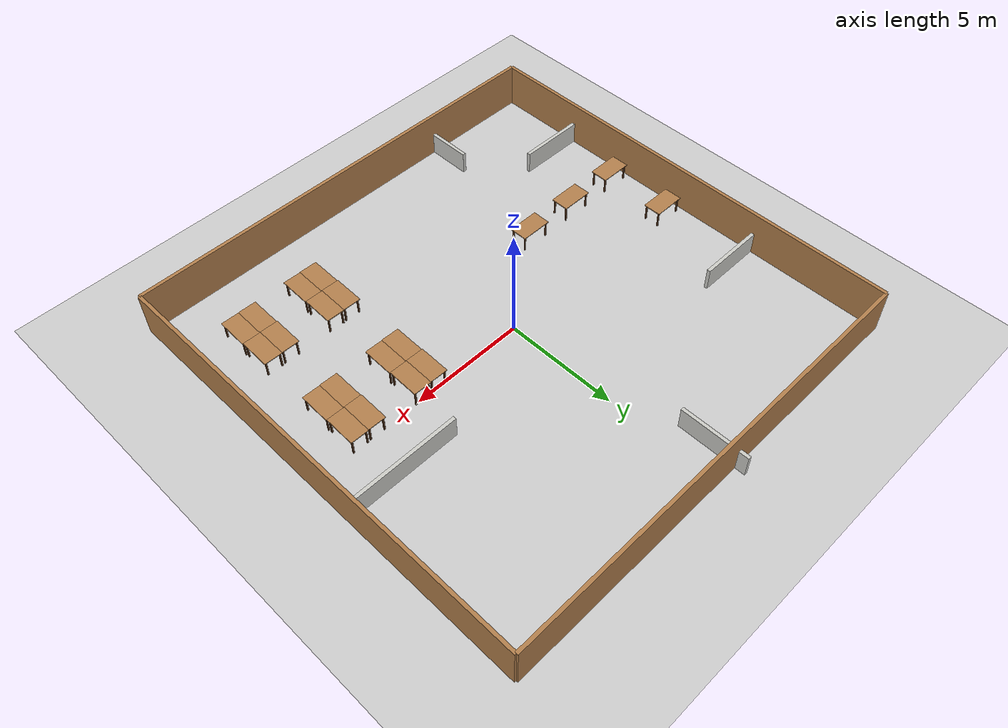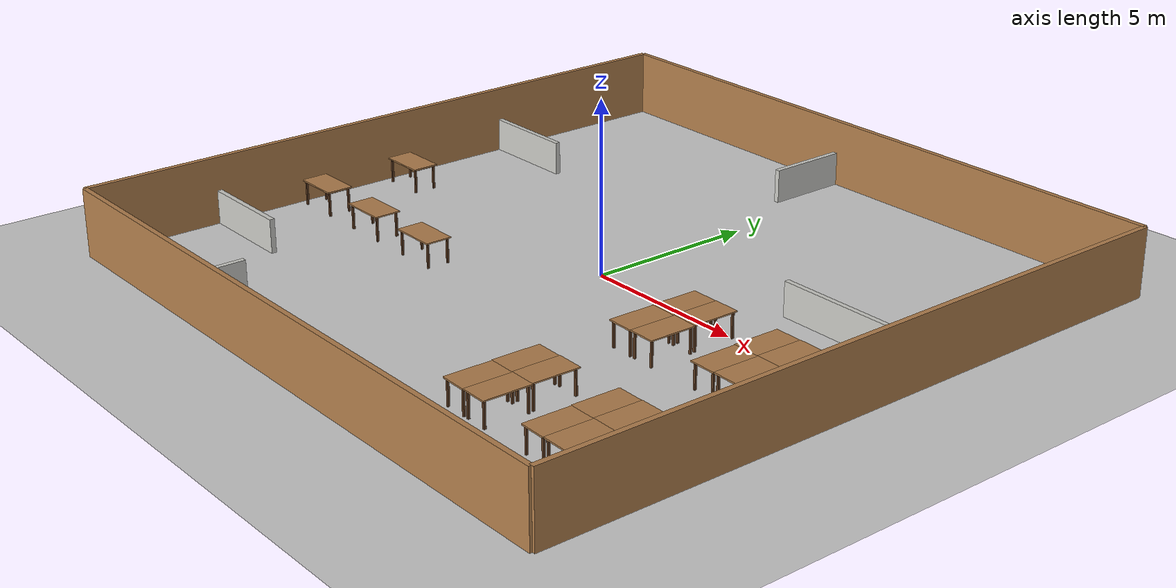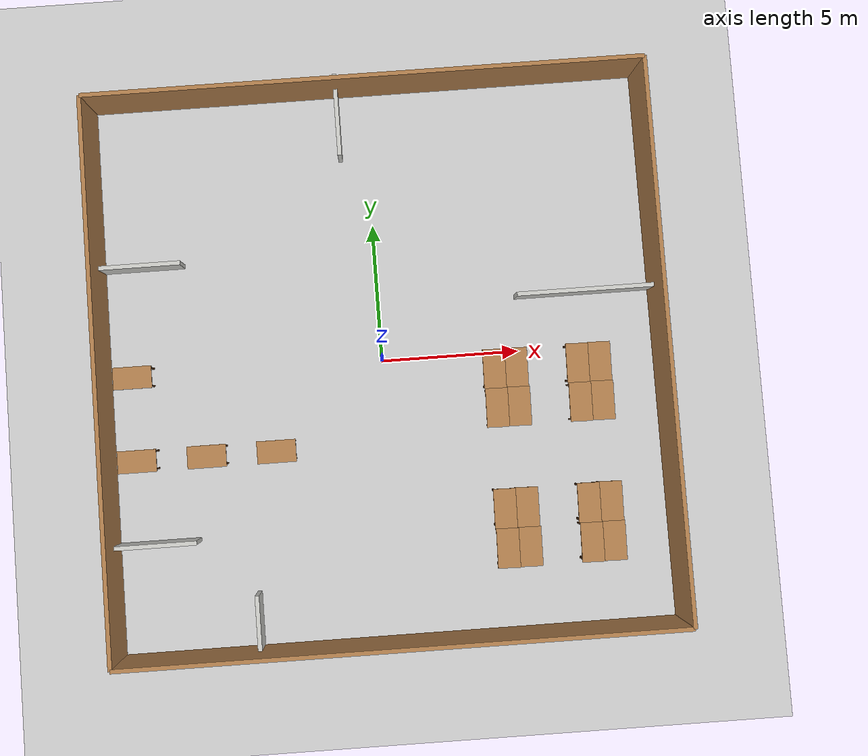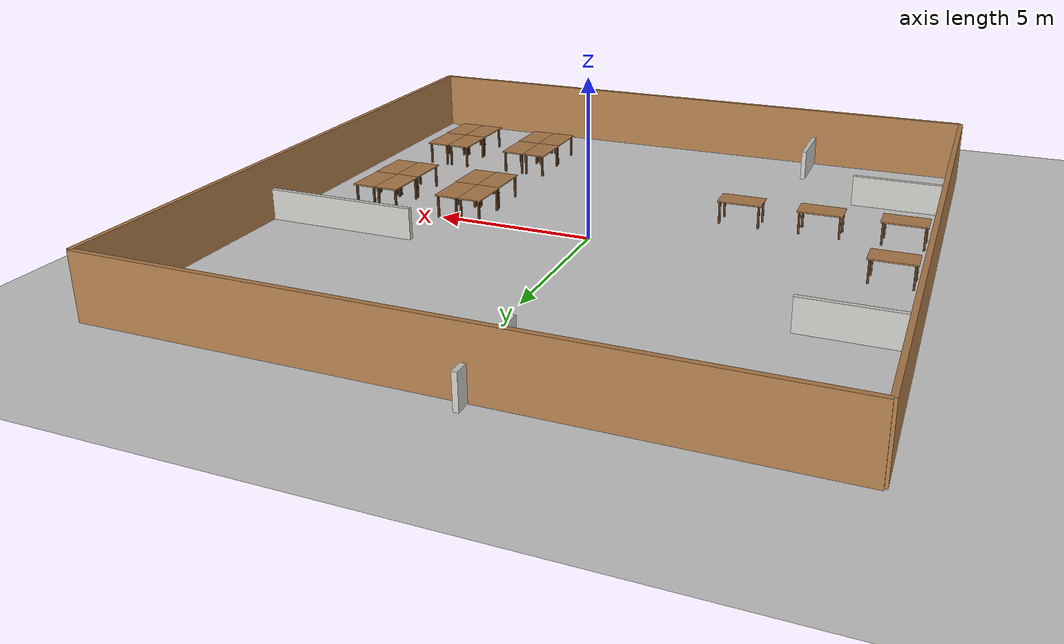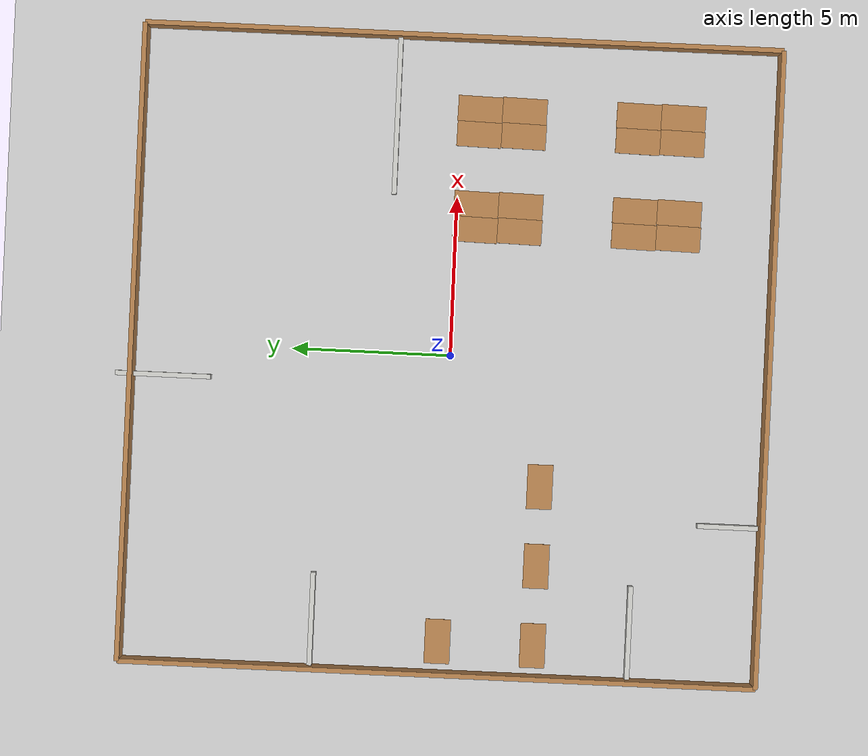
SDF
<sdf version="1.6">
 <world name="restaurant_20x20">
  <model name="ground_plane">
   <static>1</static>
   <link name="link">
    <collision name="collision">
     <geometry><plane><normal>0 0 1</normal><size>100 100</size></plane></geometry>
     <surface><friction><ode><mu>100</mu><mu2>50</mu2></ode></friction></surface>
    </collision>
    <visual name="visual">
     <cast_shadows>0</cast_shadows>
     <geometry><plane><normal>0 0 1</normal><size>100 100</size></plane></geometry>
     <material>
      <script><uri>file://media/materials/scripts/gazebo.material</uri><name>Gazebo/Grey</name></script>
     </material>
    </visual>
   </link>
  </model>
  <model name="outer_walls">
   <static>1</static>
   <link name="Wall_North">
    <pose>0 10 0 0 0 0</pose>
    <visual name="visual">
     <pose>0 0 1 0 0 0</pose>
     <geometry><box><size>20 0.15 2</size></box></geometry>
     <material>
      <script><uri>file://media/materials/scripts/gazebo.material</uri><name>Gazebo/Wood</name></script>
     </material>
    </visual>
    <collision name="collision">
     <pose>0 0 1 0 0 0</pose>
     <geometry><box><size>20 0.15 2</size></box></geometry>
    </collision>
   </link>
   <link name="Wall_South">
    <pose>0 -10 0 0 0 3.14159</pose>
    <visual name="visual">
     <pose>0 0 1 0 0 0</pose>
     <geometry><box><size>20 0.15 2</size></box></geometry>
     <material>
      <script><uri>file://media/materials/scripts/gazebo.material</uri><name>Gazebo/Wood</name></script>
     </material>
    </visual>
    <collision name="collision">
     <pose>0 0 1 0 0 0</pose>
     <geometry><box><size>20 0.15 2</size></box></geometry>
    </collision>
   </link>
   <link name="Wall_East">
    <pose>10 0 0 0 0 -1.5708</pose>
    <visual name="visual">
     <pose>0 0 1 0 0 0</pose>
     <geometry><box><size>20 0.15 2</size></box></geometry>
     <material>
      <script><uri>file://media/materials/scripts/gazebo.material</uri><name>Gazebo/Wood</name></script>
     </material>
    </visual>
    <collision name="collision">
     <pose>0 0 1 0 0 0</pose>
     <geometry><box><size>20 0.15 2</size></box></geometry>
    </collision>
   </link>
   <link name="Wall_West">
    <pose>-10 0 0 0 0 1.5708</pose>
    <visual name="visual">
     <pose>0 0 1 0 0 0</pose>
     <geometry><box><size>20 0.15 2</size></box></geometry>
     <material>
      <script><uri>file://media/materials/scripts/gazebo.material</uri><name>Gazebo/Wood</name></script>
     </material>
    </visual>
    <collision name="collision">
     <pose>0 0 1 0 0 0</pose>
     <geometry><box><size>20 0.15 2</size></box></geometry>
    </collision>
   </link>
  </model>
  <model name="partition_walls">
   <static>1</static>
   <link name="Wall_Kitchen_North">
    <pose>-8.5 -6 0.5 0 0 0</pose>
    <visual name="visual">
     <geometry><box><size>3 0.15 1</size></box></geometry>
     <material>
      <script><uri>file://media/materials/scripts/gazebo.material</uri><name>Gazebo/CeilingTiled</name></script>
     </material>
    </visual>
    <collision name="collision"><geometry><box><size>5 0.15 1</size></box></geometry></collision>
   </link>
   <link name="Wall_Kitchen_East">
    <pose>-5 -9 0.5 0 0 1.5708</pose>
    <visual name="visual">
     <geometry><box><size>2 0.15 1</size></box></geometry>
     <material>
      <script><uri>file://media/materials/scripts/gazebo.material</uri><name>Gazebo/CeilingTiled</name></script>
     </material>
    </visual>
    <collision name="collision"><geometry><box><size>6 0.15 1</size></box></geometry></collision>
   </link>
   <link name="Wall_Couple_2">
    <pose>-1 9 0.5 0 0 1.5708</pose>
    <visual name="visual">
     <geometry><box><size>3 0.15 1</size></box></geometry>
     <material>
      <script><uri>file://media/materials/scripts/gazebo.material</uri><name>Gazebo/CeilingTiled</name></script>
     </material>
    </visual>
    <collision name="collision"><geometry><box><size>6 0.15 1</size></box></geometry></collision>
   </link>
   <link name="Wall_Couple_1">
    <pose>-8.5 4 0.5 0 0 0</pose>
    <visual name="visual">
     <geometry><box><size>3 0.15 1</size></box></geometry>
     <material>
      <script><uri>file://media/materials/scripts/gazebo.material</uri><name>Gazebo/CeilingTiled</name></script>
     </material>
    </visual>
    <collision name="collision"><geometry><box><size>5 0.15 1</size></box></geometry></collision>
   </link>
   <link name="Wall_meeting">
    <pose>7.5 2 0.5 0 0 0</pose>
    <visual name="visual">
     <geometry><box><size>5 0.15 1</size></box></geometry>
     <material>
      <script><uri>file://media/materials/scripts/gazebo.material</uri><name>Gazebo/CeilingTiled</name></script>
     </material>
    </visual>
    <collision name="collision"><geometry><box><size>5 0.15 1</size></box></geometry></collision>
   </link>
  </model>
  <model name="tables_layout">
   <static>1</static>
   <link name="table_single_1">
    <pose>-9.0 -3.0 0 0 0 0</pose>
    <visual name="top_visual">
     <pose>0 0 0.75 0 0 0</pose>
     <geometry><box><size>1.4 0.8 0.04</size></box></geometry>
     <material>
      <script><uri>file://media/materials/scripts/gazebo.material</uri><name>Gazebo/Wood</name></script>
     </material>
    </visual>
    <collision name="top_collision">
     <pose>0 0 0.75 0 0 0</pose>
     <geometry><box><size>1.4 0.8 0.04</size></box></geometry>
    </collision>
    <visual name="leg_fl_visual">
     <pose>0.62 0.32 0.375 0 0 0</pose>
     <geometry><box><size>0.06 0.06 0.75</size></box></geometry>
     <material><ambient>0.35 0.22 0.12 1</ambient><diffuse>0.35 0.22 0.12 1</diffuse></material>
    </visual>
    <visual name="leg_fr_visual">
     <pose>0.62 -0.32 0.375 0 0 0</pose>
     <geometry><box><size>0.06 0.06 0.75</size></box></geometry>
     <material><ambient>0.35 0.22 0.12 1</ambient><diffuse>0.35 0.22 0.12 1</diffuse></material>
    </visual>
    <visual name="leg_bl_visual">
     <pose>-0.62 0.32 0.375 0 0 0</pose>
     <geometry><box><size>0.06 0.06 0.75</size></box></geometry>
     <material><ambient>0.35 0.22 0.12 1</ambient><diffuse>0.35 0.22 0.12 1</diffuse></material>
    </visual>
    <visual name="leg_br_visual">
     <pose>-0.62 -0.32 0.375 0 0 0</pose>
     <geometry><box><size>0.06 0.06 0.75</size></box></geometry>
     <material><ambient>0.35 0.22 0.12 1</ambient><diffuse>0.35 0.22 0.12 1</diffuse></material>
    </visual>
   </link>
   <link name="table_single_2">
    <pose>-6.5 -3.0 0 0 0 0</pose>
    <visual name="top_visual">
     <pose>0 0 0.75 0 0 0</pose>
     <geometry><box><size>1.4 0.8 0.04</size></box></geometry>
     <material>
      <script><uri>file://media/materials/scripts/gazebo.material</uri><name>Gazebo/Wood</name></script>
     </material>
    </visual>
    <collision name="top_collision">
     <pose>0 0 0.75 0 0 0</pose>
     <geometry><box><size>1.4 0.8 0.04</size></box></geometry>
    </collision>
    <visual name="leg_fl_visual">
     <pose>0.62 0.32 0.375 0 0 0</pose>
     <geometry><box><size>0.06 0.06 0.75</size></box></geometry>
     <material><ambient>0.35 0.22 0.12 1</ambient><diffuse>0.35 0.22 0.12 1</diffuse></material>
    </visual>
    <visual name="leg_fr_visual">
     <pose>0.62 -0.32 0.375 0 0 0</pose>
     <geometry><box><size>0.06 0.06 0.75</size></box></geometry>
     <material><ambient>0.35 0.22 0.12 1</ambient><diffuse>0.35 0.22 0.12 1</diffuse></material>
    </visual>
    <visual name="leg_bl_visual">
     <pose>-0.62 0.32 0.375 0 0 0</pose>
     <geometry><box><size>0.06 0.06 0.75</size></box></geometry>
     <material><ambient>0.35 0.22 0.12 1</ambient><diffuse>0.35 0.22 0.12 1</diffuse></material>
    </visual>
    <visual name="leg_br_visual">
     <pose>-0.62 -0.32 0.375 0 0 0</pose>
     <geometry><box><size>0.06 0.06 0.75</size></box></geometry>
     <material><ambient>0.35 0.22 0.12 1</ambient><diffuse>0.35 0.22 0.12 1</diffuse></material>
    </visual>
   </link>
   <link name="table_single_3">
    <pose>-4.0 -3.0 0 0 0 0</pose>
    <visual name="top_visual">
     <pose>0 0 0.75 0 0 0</pose>
     <geometry><box><size>1.4 0.8 0.04</size></box></geometry>
     <material>
      <script><uri>file://media/materials/scripts/gazebo.material</uri><name>Gazebo/Wood</name></script>
     </material>
    </visual>
    <collision name="top_collision">
     <pose>0 0 0.75 0 0 0</pose>
     <geometry><box><size>1.4 0.8 0.04</size></box></geometry>
    </collision>
    <visual name="leg_fl_visual">
     <pose>0.62 0.32 0.375 0 0 0</pose>
     <geometry><box><size>0.06 0.06 0.75</size></box></geometry>
     <material><ambient>0.35 0.22 0.12 1</ambient><diffuse>0.35 0.22 0.12 1</diffuse></material>
    </visual>
    <visual name="leg_fr_visual">
     <pose>0.62 -0.32 0.375 0 0 0</pose>
     <geometry><box><size>0.06 0.06 0.75</size></box></geometry>
     <material><ambient>0.35 0.22 0.12 1</ambient><diffuse>0.35 0.22 0.12 1</diffuse></material>
    </visual>
    <visual name="leg_bl_visual">
     <pose>-0.62 0.32 0.375 0 0 0</pose>
     <geometry><box><size>0.06 0.06 0.75</size></box></geometry>
     <material><ambient>0.35 0.22 0.12 1</ambient><diffuse>0.35 0.22 0.12 1</diffuse></material>
    </visual>
    <visual name="leg_br_visual">
     <pose>-0.62 -0.32 0.375 0 0 0</pose>
     <geometry><box><size>0.06 0.06 0.75</size></box></geometry>
     <material><ambient>0.35 0.22 0.12 1</ambient><diffuse>0.35 0.22 0.12 1</diffuse></material>
    </visual>
   </link>
   <link name="table_single_4">
    <pose>-9.0 0 0 0 0 0</pose>
    <visual name="top_visual">
     <pose>0 0 0.75 0 0 0</pose>
     <geometry><box><size>1.4 0.8 0.04</size></box></geometry>
     <material>
      <script><uri>file://media/materials/scripts/gazebo.material</uri><name>Gazebo/Wood</name></script>
     </material>
    </visual>
    <collision name="top_collision">
     <pose>0 0 0.75 0 0 0</pose>
     <geometry><box><size>1.4 0.8 0.04</size></box></geometry>
    </collision>
    <visual name="leg_fl_visual">
     <pose>0.62 0.32 0.375 0 0 0</pose>
     <geometry><box><size>0.06 0.06 0.75</size></box></geometry>
     <material><ambient>0.35 0.22 0.12 1</ambient><diffuse>0.35 0.22 0.12 1</diffuse></material>
    </visual>
    <visual name="leg_fr_visual">
     <pose>0.62 -0.32 0.375 0 0 0</pose>
     <geometry><box><size>0.06 0.06 0.75</size></box></geometry>
     <material><ambient>0.35 0.22 0.12 1</ambient><diffuse>0.35 0.22 0.12 1</diffuse></material>
    </visual>
    <visual name="leg_bl_visual">
     <pose>-0.62 0.32 0.375 0 0 0</pose>
     <geometry><box><size>0.06 0.06 0.75</size></box></geometry>
     <material><ambient>0.35 0.22 0.12 1</ambient><diffuse>0.35 0.22 0.12 1</diffuse></material>
    </visual>
    <visual name="leg_br_visual">
     <pose>-0.62 -0.32 0.375 0 0 0</pose>
     <geometry><box><size>0.06 0.06 0.75</size></box></geometry>
     <material><ambient>0.35 0.22 0.12 1</ambient><diffuse>0.35 0.22 0.12 1</diffuse></material>
    </visual>
   </link>
   <link name="banquet_1">
    <pose>7.0 -7.0 0 0 0 1.550</pose>
    <visual name="top_visual">
     <pose>0 0 0.75 0 0 0</pose>
     <geometry><box><size>1.4 0.8 0.04</size></box></geometry>
     <material>
      <script><uri>file://media/materials/scripts/gazebo.material</uri><name>Gazebo/Wood</name></script>
     </material>
    </visual>
    <collision name="top_collision">
     <pose>0 0 0.75 0 0 0</pose>
     <geometry><box><size>1.4 0.8 0.04</size></box></geometry>
    </collision>
    <visual name="leg_fl_visual">
     <pose>0.62 0.32 0.375 0 0 0</pose>
     <geometry><box><size>0.06 0.06 0.75</size></box></geometry>
     <material><ambient>0.35 0.22 0.12 1</ambient><diffuse>0.35 0.22 0.12 1</diffuse></material>
    </visual>
    <visual name="leg_fr_visual">
     <pose>0.62 -0.32 0.375 0 0 0</pose>
     <geometry><box><size>0.06 0.06 0.75</size></box></geometry>
     <material><ambient>0.35 0.22 0.12 1</ambient><diffuse>0.35 0.22 0.12 1</diffuse></material>
    </visual>
    <visual name="leg_bl_visual">
     <pose>-0.62 0.32 0.375 0 0 0</pose>
     <geometry><box><size>0.06 0.06 0.75</size></box></geometry>
     <material><ambient>0.35 0.22 0.12 1</ambient><diffuse>0.35 0.22 0.12 1</diffuse></material>
    </visual>
    <visual name="leg_br_visual">
     <pose>-0.62 -0.32 0.375 0 0 0</pose>
     <geometry><box><size>0.06 0.06 0.75</size></box></geometry>
     <material><ambient>0.35 0.22 0.12 1</ambient><diffuse>0.35 0.22 0.12 1</diffuse></material>
    </visual>
   </link>
   <link name="banquet_2">
    <pose>7.8 -7.0 0 0 0 1.550</pose>
    <visual name="top_visual">
     <pose>0 0 0.75 0 0 0</pose>
     <geometry><box><size>1.4 0.8 0.04</size></box></geometry>
     <material>
      <script><uri>file://media/materials/scripts/gazebo.material</uri><name>Gazebo/Wood</name></script>
     </material>
    </visual>
    <collision name="top_collision">
     <pose>0 0 0.75 0 0 0</pose>
     <geometry><box><size>1.4 0.8 0.04</size></box></geometry>
    </collision>
    <visual name="leg_fl_visual">
     <pose>0.62 0.32 0.375 0 0 0</pose>
     <geometry><box><size>0.06 0.06 0.75</size></box></geometry>
     <material><ambient>0.35 0.22 0.12 1</ambient><diffuse>0.35 0.22 0.12 1</diffuse></material>
    </visual>
    <visual name="leg_fr_visual">
     <pose>0.62 -0.32 0.375 0 0 0</pose>
     <geometry><box><size>0.06 0.06 0.75</size></box></geometry>
     <material><ambient>0.35 0.22 0.12 1</ambient><diffuse>0.35 0.22 0.12 1</diffuse></material>
    </visual>
    <visual name="leg_bl_visual">
     <pose>-0.62 0.32 0.375 0 0 0</pose>
     <geometry><box><size>0.06 0.06 0.75</size></box></geometry>
     <material><ambient>0.35 0.22 0.12 1</ambient><diffuse>0.35 0.22 0.12 1</diffuse></material>
    </visual>
    <visual name="leg_br_visual">
     <pose>-0.62 -0.32 0.375 0 0 0</pose>
     <geometry><box><size>0.06 0.06 0.75</size></box></geometry>
     <material><ambient>0.35 0.22 0.12 1</ambient><diffuse>0.35 0.22 0.12 1</diffuse></material>
    </visual>
   </link>
   <link name="banquet_3">
    <pose>7.0 -5.6 0 0 0 1.550</pose>
    <visual name="top_visual">
     <pose>0 0 0.75 0 0 0</pose>
     <geometry><box><size>1.4 0.8 0.04</size></box></geometry>
     <material>
      <script><uri>file://media/materials/scripts/gazebo.material</uri><name>Gazebo/Wood</name></script>
     </material>
    </visual>
    <collision name="top_collision">
     <pose>0 0 0.75 0 0 0</pose>
     <geometry><box><size>1.4 0.8 0.04</size></box></geometry>
    </collision>
    <visual name="leg_fl_visual">
     <pose>0.62 0.32 0.375 0 0 0</pose>
     <geometry><box><size>0.06 0.06 0.75</size></box></geometry>
     <material><ambient>0.35 0.22 0.12 1</ambient><diffuse>0.35 0.22 0.12 1</diffuse></material>
    </visual>
    <visual name="leg_fr_visual">
     <pose>0.62 -0.32 0.375 0 0 0</pose>
     <geometry><box><size>0.06 0.06 0.75</size></box></geometry>
     <material><ambient>0.35 0.22 0.12 1</ambient><diffuse>0.35 0.22 0.12 1</diffuse></material>
    </visual>
    <visual name="leg_bl_visual">
     <pose>-0.62 0.32 0.375 0 0 0</pose>
     <geometry><box><size>0.06 0.06 0.75</size></box></geometry>
     <material><ambient>0.35 0.22 0.12 1</ambient><diffuse>0.35 0.22 0.12 1</diffuse></material>
    </visual>
    <visual name="leg_br_visual">
     <pose>-0.62 -0.32 0.375 0 0 0</pose>
     <geometry><box><size>0.06 0.06 0.75</size></box></geometry>
     <material><ambient>0.35 0.22 0.12 1</ambient><diffuse>0.35 0.22 0.12 1</diffuse></material>
    </visual>
   </link>
   <link name="banquet_4">
    <pose>7.8 -5.6 0 0 0 1.550</pose>
    <visual name="top_visual">
     <pose>0 0 0.75 0 0 0</pose>
     <geometry><box><size>1.4 0.8 0.04</size></box></geometry>
     <material>
      <script><uri>file://media/materials/scripts/gazebo.material</uri><name>Gazebo/Wood</name></script>
     </material>
    </visual>
    <collision name="top_collision">
     <pose>0 0 0.75 0 0 0</pose>
     <geometry><box><size>1.4 0.8 0.04</size></box></geometry>
    </collision>
    <visual name="leg_fl_visual">
     <pose>0.62 0.32 0.375 0 0 0</pose>
     <geometry><box><size>0.06 0.06 0.75</size></box></geometry>
     <material><ambient>0.35 0.22 0.12 1</ambient><diffuse>0.35 0.22 0.12 1</diffuse></material>
    </visual>
    <visual name="leg_fr_visual">
     <pose>0.62 -0.32 0.375 0 0 0</pose>
     <geometry><box><size>0.06 0.06 0.75</size></box></geometry>
     <material><ambient>0.35 0.22 0.12 1</ambient><diffuse>0.35 0.22 0.12 1</diffuse></material>
    </visual>
    <visual name="leg_bl_visual">
     <pose>-0.62 0.32 0.375 0 0 0</pose>
     <geometry><box><size>0.06 0.06 0.75</size></box></geometry>
     <material><ambient>0.35 0.22 0.12 1</ambient><diffuse>0.35 0.22 0.12 1</diffuse></material>
    </visual>
    <visual name="leg_br_visual">
     <pose>-0.62 -0.32 0.375 0 0 0</pose>
     <geometry><box><size>0.06 0.06 0.75</size></box></geometry>
     <material><ambient>0.35 0.22 0.12 1</ambient><diffuse>0.35 0.22 0.12 1</diffuse></material>
    </visual>
   </link>
   <link name="banquet_5">
    <pose>7.0 -2 0 0 0 1.550</pose>
    <visual name="top_visual">
     <pose>0 0 0.75 0 0 0</pose>
     <geometry><box><size>1.4 0.8 0.04</size></box></geometry>
     <material>
      <script><uri>file://media/materials/scripts/gazebo.material</uri><name>Gazebo/Wood</name></script>
     </material>
    </visual>
    <collision name="top_collision">
     <pose>0 0 0.75 0 0 0</pose>
     <geometry><box><size>1.4 0.8 0.04</size></box></geometry>
    </collision>
    <visual name="leg_fl_visual">
     <pose>0.62 0.32 0.375 0 0 0</pose>
     <geometry><box><size>0.06 0.06 0.75</size></box></geometry>
     <material><ambient>0.35 0.22 0.12 1</ambient><diffuse>0.35 0.22 0.12 1</diffuse></material>
    </visual>
    <visual name="leg_fr_visual">
     <pose>0.62 -0.32 0.375 0 0 0</pose>
     <geometry><box><size>0.06 0.06 0.75</size></box></geometry>
     <material><ambient>0.35 0.22 0.12 1</ambient><diffuse>0.35 0.22 0.12 1</diffuse></material>
    </visual>
    <visual name="leg_bl_visual">
     <pose>-0.62 0.32 0.375 0 0 0</pose>
     <geometry><box><size>0.06 0.06 0.75</size></box></geometry>
     <material><ambient>0.35 0.22 0.12 1</ambient><diffuse>0.35 0.22 0.12 1</diffuse></material>
    </visual>
    <visual name="leg_br_visual">
     <pose>-0.62 -0.32 0.375 0 0 0</pose>
     <geometry><box><size>0.06 0.06 0.75</size></box></geometry>
     <material><ambient>0.35 0.22 0.12 1</ambient><diffuse>0.35 0.22 0.12 1</diffuse></material>
    </visual>
   </link>
   <link name="banquet_6">
    <pose>7.8 -2 0 0 0 1.5500</pose>
    <visual name="top_visual">
     <pose>0 0 0.75 0 0 0</pose>
     <geometry><box><size>1.4 0.8 0.04</size></box></geometry>
     <material>
      <script><uri>file://media/materials/scripts/gazebo.material</uri><name>Gazebo/Wood</name></script>
     </material>
    </visual>
    <collision name="top_collision">
     <pose>0 0 0.75 0 0 0</pose>
     <geometry><box><size>1.4 0.8 0.04</size></box></geometry>
    </collision>
    <visual name="leg_fl_visual">
     <pose>0.62 0.32 0.375 0 0 0</pose>
     <geometry><box><size>0.06 0.06 0.75</size></box></geometry>
     <material><ambient>0.35 0.22 0.12 1</ambient><diffuse>0.35 0.22 0.12 1</diffuse></material>
    </visual>
    <visual name="leg_fr_visual">
     <pose>0.62 -0.32 0.375 0 0 0</pose>
     <geometry><box><size>0.06 0.06 0.75</size></box></geometry>
     <material><ambient>0.35 0.22 0.12 1</ambient><diffuse>0.35 0.22 0.12 1</diffuse></material>
    </visual>
    <visual name="leg_bl_visual">
     <pose>-0.62 0.32 0.375 0 0 0</pose>
     <geometry><box><size>0.06 0.06 0.75</size></box></geometry>
     <material><ambient>0.35 0.22 0.12 1</ambient><diffuse>0.35 0.22 0.12 1</diffuse></material>
    </visual>
    <visual name="leg_br_visual">
     <pose>-0.62 -0.32 0.375 0 0 0</pose>
     <geometry><box><size>0.06 0.06 0.75</size></box></geometry>
     <material><ambient>0.35 0.22 0.12 1</ambient><diffuse>0.35 0.22 0.12 1</diffuse></material>
    </visual>
   </link>
   <link name="banquet_7">
    <pose>7.0 -0.6 0 0 0 1.550</pose>
    <visual name="top_visual">
     <pose>0 0 0.75 0 0 0</pose>
     <geometry><box><size>1.4 0.8 0.04</size></box></geometry>
     <material>
      <script><uri>file://media/materials/scripts/gazebo.material</uri><name>Gazebo/Wood</name></script>
     </material>
    </visual>
    <collision name="top_collision">
     <pose>0 0 0.75 0 0 0</pose>
     <geometry><box><size>1.4 0.8 0.04</size></box></geometry>
    </collision>
    <visual name="leg_fl_visual">
     <pose>0.62 0.32 0.375 0 0 0</pose>
     <geometry><box><size>0.06 0.06 0.75</size></box></geometry>
     <material><ambient>0.35 0.22 0.12 1</ambient><diffuse>0.35 0.22 0.12 1</diffuse></material>
    </visual>
    <visual name="leg_fr_visual">
     <pose>0.62 -0.32 0.375 0 0 0</pose>
     <geometry><box><size>0.06 0.06 0.75</size></box></geometry>
     <material><ambient>0.35 0.22 0.12 1</ambient><diffuse>0.35 0.22 0.12 1</diffuse></material>
    </visual>
    <visual name="leg_bl_visual">
     <pose>-0.62 0.32 0.375 0 0 0</pose>
     <geometry><box><size>0.06 0.06 0.75</size></box></geometry>
     <material><ambient>0.35 0.22 0.12 1</ambient><diffuse>0.35 0.22 0.12 1</diffuse></material>
    </visual>
    <visual name="leg_br_visual">
     <pose>-0.62 -0.32 0.375 0 0 0</pose>
     <geometry><box><size>0.06 0.06 0.75</size></box></geometry>
     <material><ambient>0.35 0.22 0.12 1</ambient><diffuse>0.35 0.22 0.12 1</diffuse></material>
    </visual>
   </link>
   <link name="banquet_8">
    <pose>7.8 -0.6 0 0 0 1.550</pose>
    <visual name="top_visual">
     <pose>0 0 0.75 0 0 0</pose>
     <geometry><box><size>1.4 0.8 0.04</size></box></geometry>
     <material>
      <script><uri>file://media/materials/scripts/gazebo.material</uri><name>Gazebo/Wood</name></script>
     </material>
    </visual>
    <collision name="top_collision">
     <pose>0 0 0.75 0 0 0</pose>
     <geometry><box><size>1.4 0.8 0.04</size></box></geometry>
    </collision>
    <visual name="leg_fl_visual">
     <pose>0.62 0.32 0.375 0 0 0</pose>
     <geometry><box><size>0.06 0.06 0.75</size></box></geometry>
     <material><ambient>0.35 0.22 0.12 1</ambient><diffuse>0.35 0.22 0.12 1</diffuse></material>
    </visual>
    <visual name="leg_fr_visual">
     <pose>0.62 -0.32 0.375 0 0 0</pose>
     <geometry><box><size>0.06 0.06 0.75</size></box></geometry>
     <material><ambient>0.35 0.22 0.12 1</ambient><diffuse>0.35 0.22 0.12 1</diffuse></material>
    </visual>
    <visual name="leg_bl_visual">
     <pose>-0.62 0.32 0.375 0 0 0</pose>
     <geometry><box><size>0.06 0.06 0.75</size></box></geometry>
     <material><ambient>0.35 0.22 0.12 1</ambient><diffuse>0.35 0.22 0.12 1</diffuse></material>
    </visual>
    <visual name="leg_br_visual">
     <pose>-0.62 -0.32 0.375 0 0 0</pose>
     <geometry><box><size>0.06 0.06 0.75</size></box></geometry>
     <material><ambient>0.35 0.22 0.12 1</ambient><diffuse>0.35 0.22 0.12 1</diffuse></material>
    </visual>
   </link>
   <link name="banquet_9">
    <pose>4.0 -7.0 0 0 0 1.550</pose>
    <visual name="top_visual">
     <pose>0 0 0.75 0 0 0</pose>
     <geometry><box><size>1.4 0.8 0.04</size></box></geometry>
     <material>
      <script><uri>file://media/materials/scripts/gazebo.material</uri><name>Gazebo/Wood</name></script>
     </material>
    </visual>
    <collision name="top_collision">
     <pose>0 0 0.75 0 0 0</pose>
     <geometry><box><size>1.4 0.8 0.04</size></box></geometry>
    </collision>
    <visual name="leg_fl_visual">
     <pose>0.62 0.32 0.375 0 0 0</pose>
     <geometry><box><size>0.06 0.06 0.75</size></box></geometry>
     <material><ambient>0.35 0.22 0.12 1</ambient><diffuse>0.35 0.22 0.12 1</diffuse></material>
    </visual>
    <visual name="leg_fr_visual">
     <pose>0.62 -0.32 0.375 0 0 0</pose>
     <geometry><box><size>0.06 0.06 0.75</size></box></geometry>
     <material><ambient>0.35 0.22 0.12 1</ambient><diffuse>0.35 0.22 0.12 1</diffuse></material>
    </visual>
    <visual name="leg_bl_visual">
     <pose>-0.62 0.32 0.375 0 0 0</pose>
     <geometry><box><size>0.06 0.06 0.75</size></box></geometry>
     <material><ambient>0.35 0.22 0.12 1</ambient><diffuse>0.35 0.22 0.12 1</diffuse></material>
    </visual>
    <visual name="leg_br_visual">
     <pose>-0.62 -0.32 0.375 0 0 0</pose>
     <geometry><box><size>0.06 0.06 0.75</size></box></geometry>
     <material><ambient>0.35 0.22 0.12 1</ambient><diffuse>0.35 0.22 0.12 1</diffuse></material>
    </visual>
   </link>
   <link name="banquet_10">
    <pose>4.8 -7 0 0 0 1.5500</pose>
    <visual name="top_visual">
     <pose>0 0 0.75 0 0 0</pose>
     <geometry><box><size>1.4 0.8 0.04</size></box></geometry>
     <material>
      <script><uri>file://media/materials/scripts/gazebo.material</uri><name>Gazebo/Wood</name></script>
     </material>
    </visual>
    <collision name="top_collision">
     <pose>0 0 0.75 0 0 0</pose>
     <geometry><box><size>1.4 0.8 0.04</size></box></geometry>
    </collision>
    <visual name="leg_fl_visual">
     <pose>0.62 0.32 0.375 0 0 0</pose>
     <geometry><box><size>0.06 0.06 0.75</size></box></geometry>
     <material><ambient>0.35 0.22 0.12 1</ambient><diffuse>0.35 0.22 0.12 1</diffuse></material>
    </visual>
    <visual name="leg_fr_visual">
     <pose>0.62 -0.32 0.375 0 0 0</pose>
     <geometry><box><size>0.06 0.06 0.75</size></box></geometry>
     <material><ambient>0.35 0.22 0.12 1</ambient><diffuse>0.35 0.22 0.12 1</diffuse></material>
    </visual>
    <visual name="leg_bl_visual">
     <pose>-0.62 0.32 0.375 0 0 0</pose>
     <geometry><box><size>0.06 0.06 0.75</size></box></geometry>
     <material><ambient>0.35 0.22 0.12 1</ambient><diffuse>0.35 0.22 0.12 1</diffuse></material>
    </visual>
    <visual name="leg_br_visual">
     <pose>-0.62 -0.32 0.375 0 0 0</pose>
     <geometry><box><size>0.06 0.06 0.75</size></box></geometry>
     <material><ambient>0.35 0.22 0.12 1</ambient><diffuse>0.35 0.22 0.12 1</diffuse></material>
    </visual>
   </link>
   <link name="banquet_11">
    <pose>4.0 -5.6 0 0 0 1.550</pose>
    <visual name="top_visual">
     <pose>0 0 0.75 0 0 0</pose>
     <geometry><box><size>1.4 0.8 0.04</size></box></geometry>
     <material>
      <script><uri>file://media/materials/scripts/gazebo.material</uri><name>Gazebo/Wood</name></script>
     </material>
    </visual>
    <collision name="top_collision">
     <pose>0 0 0.75 0 0 0</pose>
     <geometry><box><size>1.4 0.8 0.04</size></box></geometry>
    </collision>
    <visual name="leg_fl_visual">
     <pose>0.62 0.32 0.375 0 0 0</pose>
     <geometry><box><size>0.06 0.06 0.75</size></box></geometry>
     <material><ambient>0.35 0.22 0.12 1</ambient><diffuse>0.35 0.22 0.12 1</diffuse></material>
    </visual>
    <visual name="leg_fr_visual">
     <pose>0.62 -0.32 0.375 0 0 0</pose>
     <geometry><box><size>0.06 0.06 0.75</size></box></geometry>
     <material><ambient>0.35 0.22 0.12 1</ambient><diffuse>0.35 0.22 0.12 1</diffuse></material>
    </visual>
    <visual name="leg_bl_visual">
     <pose>-0.62 0.32 0.375 0 0 0</pose>
     <geometry><box><size>0.06 0.06 0.75</size></box></geometry>
     <material><ambient>0.35 0.22 0.12 1</ambient><diffuse>0.35 0.22 0.12 1</diffuse></material>
    </visual>
    <visual name="leg_br_visual">
     <pose>-0.62 -0.32 0.375 0 0 0</pose>
     <geometry><box><size>0.06 0.06 0.75</size></box></geometry>
     <material><ambient>0.35 0.22 0.12 1</ambient><diffuse>0.35 0.22 0.12 1</diffuse></material>
    </visual>
   </link>
   <link name="banquet_12">
    <pose>4.8 -5.6 0 0 0 1.550</pose>
    <visual name="top_visual">
     <pose>0 0 0.75 0 0 0</pose>
     <geometry><box><size>1.4 0.8 0.04</size></box></geometry>
     <material>
      <script><uri>file://media/materials/scripts/gazebo.material</uri><name>Gazebo/Wood</name></script>
     </material>
    </visual>
    <collision name="top_collision">
     <pose>0 0 0.75 0 0 0</pose>
     <geometry><box><size>1.4 0.8 0.04</size></box></geometry>
    </collision>
    <visual name="leg_fl_visual">
     <pose>0.62 0.32 0.375 0 0 0</pose>
     <geometry><box><size>0.06 0.06 0.75</size></box></geometry>
     <material><ambient>0.35 0.22 0.12 1</ambient><diffuse>0.35 0.22 0.12 1</diffuse></material>
    </visual>
    <visual name="leg_fr_visual">
     <pose>0.62 -0.32 0.375 0 0 0</pose>
     <geometry><box><size>0.06 0.06 0.75</size></box></geometry>
     <material><ambient>0.35 0.22 0.12 1</ambient><diffuse>0.35 0.22 0.12 1</diffuse></material>
    </visual>
    <visual name="leg_bl_visual">
     <pose>-0.62 0.32 0.375 0 0 0</pose>
     <geometry><box><size>0.06 0.06 0.75</size></box></geometry>
     <material><ambient>0.35 0.22 0.12 1</ambient><diffuse>0.35 0.22 0.12 1</diffuse></material>
    </visual>
    <visual name="leg_br_visual">
     <pose>-0.62 -0.32 0.375 0 0 0</pose>
     <geometry><box><size>0.06 0.06 0.75</size></box></geometry>
     <material><ambient>0.35 0.22 0.12 1</ambient><diffuse>0.35 0.22 0.12 1</diffuse></material>
    </visual>
   </link>
   <link name="banquet_13">
    <pose>4.0 -2 0 0 0 1.550</pose>
    <visual name="top_visual">
     <pose>0 0 0.75 0 0 0</pose>
     <geometry><box><size>1.4 0.8 0.04</size></box></geometry>
     <material>
      <script><uri>file://media/materials/scripts/gazebo.material</uri><name>Gazebo/Wood</name></script>
     </material>
    </visual>
    <collision name="top_collision">
     <pose>0 0 0.75 0 0 0</pose>
     <geometry><box><size>1.4 0.8 0.04</size></box></geometry>
    </collision>
    <visual name="leg_fl_visual">
     <pose>0.62 0.32 0.375 0 0 0</pose>
     <geometry><box><size>0.06 0.06 0.75</size></box></geometry>
     <material><ambient>0.35 0.22 0.12 1</ambient><diffuse>0.35 0.22 0.12 1</diffuse></material>
    </visual>
    <visual name="leg_fr_visual">
     <pose>0.62 -0.32 0.375 0 0 0</pose>
     <geometry><box><size>0.06 0.06 0.75</size></box></geometry>
     <material><ambient>0.35 0.22 0.12 1</ambient><diffuse>0.35 0.22 0.12 1</diffuse></material>
    </visual>
    <visual name="leg_bl_visual">
     <pose>-0.62 0.32 0.375 0 0 0</pose>
     <geometry><box><size>0.06 0.06 0.75</size></box></geometry>
     <material><ambient>0.35 0.22 0.12 1</ambient><diffuse>0.35 0.22 0.12 1</diffuse></material>
    </visual>
    <visual name="leg_br_visual">
     <pose>-0.62 -0.32 0.375 0 0 0</pose>
     <geometry><box><size>0.06 0.06 0.75</size></box></geometry>
     <material><ambient>0.35 0.22 0.12 1</ambient><diffuse>0.35 0.22 0.12 1</diffuse></material>
    </visual>
   </link>
   <link name="banquet_14">
    <pose>4.8 -2 0 0 0 1.5500</pose>
    <visual name="top_visual">
     <pose>0 0 0.75 0 0 0</pose>
     <geometry><box><size>1.4 0.8 0.04</size></box></geometry>
     <material>
      <script><uri>file://media/materials/scripts/gazebo.material</uri><name>Gazebo/Wood</name></script>
     </material>
    </visual>
    <collision name="top_collision">
     <pose>0 0 0.75 0 0 0</pose>
     <geometry><box><size>1.4 0.8 0.04</size></box></geometry>
    </collision>
    <visual name="leg_fl_visual">
     <pose>0.62 0.32 0.375 0 0 0</pose>
     <geometry><box><size>0.06 0.06 0.75</size></box></geometry>
     <material><ambient>0.35 0.22 0.12 1</ambient><diffuse>0.35 0.22 0.12 1</diffuse></material>
    </visual>
    <visual name="leg_fr_visual">
     <pose>0.62 -0.32 0.375 0 0 0</pose>
     <geometry><box><size>0.06 0.06 0.75</size></box></geometry>
     <material><ambient>0.35 0.22 0.12 1</ambient><diffuse>0.35 0.22 0.12 1</diffuse></material>
    </visual>
    <visual name="leg_bl_visual">
     <pose>-0.62 0.32 0.375 0 0 0</pose>
     <geometry><box><size>0.06 0.06 0.75</size></box></geometry>
     <material><ambient>0.35 0.22 0.12 1</ambient><diffuse>0.35 0.22 0.12 1</diffuse></material>
    </visual>
    <visual name="leg_br_visual">
     <pose>-0.62 -0.32 0.375 0 0 0</pose>
     <geometry><box><size>0.06 0.06 0.75</size></box></geometry>
     <material><ambient>0.35 0.22 0.12 1</ambient><diffuse>0.35 0.22 0.12 1</diffuse></material>
    </visual>
   </link>
   <link name="banquet_15">
    <pose>4.0 -0.6 0 0 0 1.550</pose>
    <visual name="top_visual">
     <pose>0 0 0.75 0 0 0</pose>
     <geometry><box><size>1.4 0.8 0.04</size></box></geometry>
     <material>
      <script><uri>file://media/materials/scripts/gazebo.material</uri><name>Gazebo/Wood</name></script>
     </material>
    </visual>
    <collision name="top_collision">
     <pose>0 0 0.75 0 0 0</pose>
     <geometry><box><size>1.4 0.8 0.04</size></box></geometry>
    </collision>
    <visual name="leg_fl_visual">
     <pose>0.62 0.32 0.375 0 0 0</pose>
     <geometry><box><size>0.06 0.06 0.75</size></box></geometry>
     <material><ambient>0.35 0.22 0.12 1</ambient><diffuse>0.35 0.22 0.12 1</diffuse></material>
    </visual>
    <visual name="leg_fr_visual">
     <pose>0.62 -0.32 0.375 0 0 0</pose>
     <geometry><box><size>0.06 0.06 0.75</size></box></geometry>
     <material><ambient>0.35 0.22 0.12 1</ambient><diffuse>0.35 0.22 0.12 1</diffuse></material>
    </visual>
    <visual name="leg_bl_visual">
     <pose>-0.62 0.32 0.375 0 0 0</pose>
     <geometry><box><size>0.06 0.06 0.75</size></box></geometry>
     <material><ambient>0.35 0.22 0.12 1</ambient><diffuse>0.35 0.22 0.12 1</diffuse></material>
    </visual>
    <visual name="leg_br_visual">
     <pose>-0.62 -0.32 0.375 0 0 0</pose>
     <geometry><box><size>0.06 0.06 0.75</size></box></geometry>
     <material><ambient>0.35 0.22 0.12 1</ambient><diffuse>0.35 0.22 0.12 1</diffuse></material>
    </visual>
   </link>
   <link name="banquet_16">
    <pose>4.8 -0.6 0 0 0 1.550</pose>
    <visual name="top_visual">
     <pose>0 0 0.75 0 0 0</pose>
     <geometry><box><size>1.4 0.8 0.04</size></box></geometry>
     <material>
      <script><uri>file://media/materials/scripts/gazebo.material</uri><name>Gazebo/Wood</name></script>
     </material>
    </visual>
    <collision name="top_collision">
     <pose>0 0 0.75 0 0 0</pose>
     <geometry><box><size>1.4 0.8 0.04</size></box></geometry>
    </collision>
    <visual name="leg_fl_visual">
     <pose>0.62 0.32 0.375 0 0 0</pose>
     <geometry><box><size>0.06 0.06 0.75</size></box></geometry>
     <material><ambient>0.35 0.22 0.12 1</ambient><diffuse>0.35 0.22 0.12 1</diffuse></material>
    </visual>
    <visual name="leg_fr_visual">
     <pose>0.62 -0.32 0.375 0 0 0</pose>
     <geometry><box><size>0.06 0.06 0.75</size></box></geometry>
     <material><ambient>0.35 0.22 0.12 1</ambient><diffuse>0.35 0.22 0.12 1</diffuse></material>
    </visual>
    <visual name="leg_bl_visual">
     <pose>-0.62 0.32 0.375 0 0 0</pose>
     <geometry><box><size>0.06 0.06 0.75</size></box></geometry>
     <material><ambient>0.35 0.22 0.12 1</ambient><diffuse>0.35 0.22 0.12 1</diffuse></material>
    </visual>
    <visual name="leg_br_visual">
     <pose>-0.62 -0.32 0.375 0 0 0</pose>
     <geometry><box><size>0.06 0.06 0.75</size></box></geometry>
     <material><ambient>0.35 0.22 0.12 1</ambient><diffuse>0.35 0.22 0.12 1</diffuse></material>
    </visual>
   </link>
  </model>
  <model name="bookshelf"><static>1</static><pose>-7 -8 0 0 0 0</pose><link name="link"/></model>
  <model name="cardboard_box_3"><static>1</static><pose>-9 -7 0.15 0 0 0</pose></model>
  <model name="cardboard_box_4"><static>1</static><pose>-8 -7 0.15 0 0 0</pose></model>
  <model name="sliding_door_main">
   <static>false</static>
   <pose>0 -10 0.5 0 0 0</pose>
   <link name="gate_panel"/>
   <joint name="sliding_joint" type="prismatic">
    <parent>world</parent>
    <child>gate_panel</child>
    <axis><xyz>1 0 0</xyz><limit><lower>-1.5</lower><upper>1.5</upper></limit></axis>
   </joint>
   <plugin name="sliding_door_plugin" filename="librotating_wall_plugin.so">
    <joint_name>sliding_joint</joint_name>
    <amplitude>1.3</amplitude>
    <speed>0.5</speed>
   </plugin>
  </model>
 </world>
</sdf>
